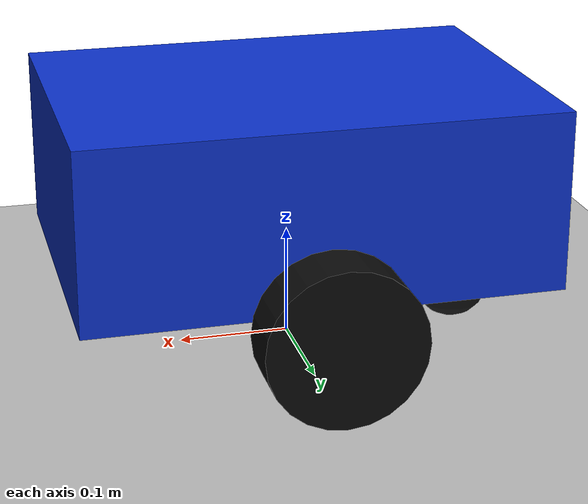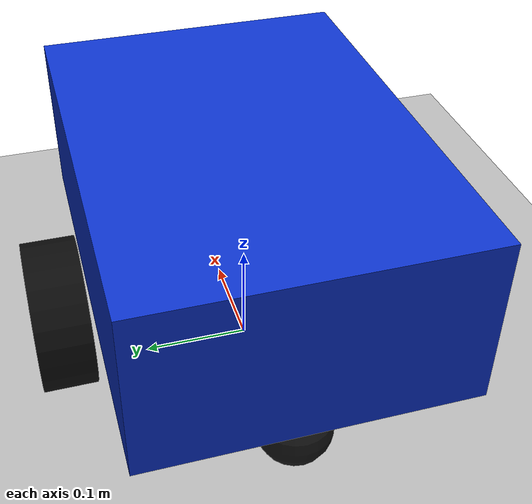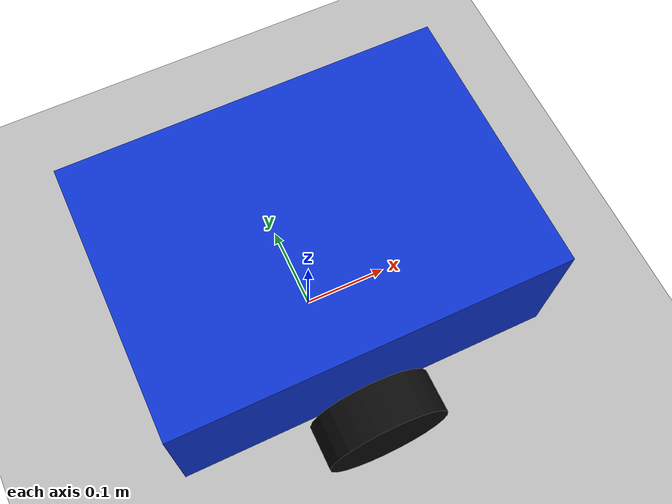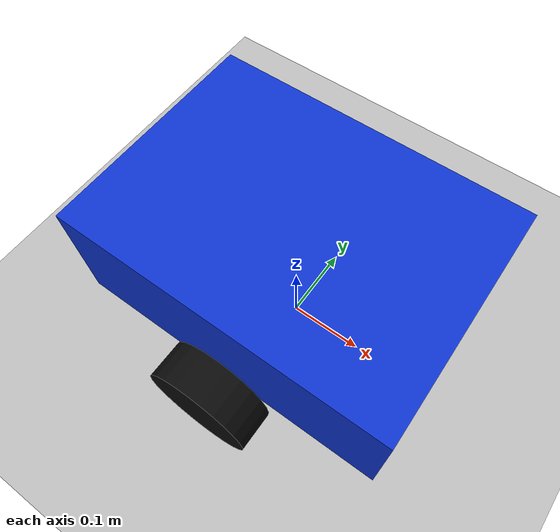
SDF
<?xml version="1.0"?>
<sdf version="1.10">
  <world name="diffbot_drive_world">
    <plugin filename="gz-sim-physics-system" name="gz::sim::systems::Physics"/>
    <plugin filename="gz-sim-user-commands-system" name="gz::sim::systems::UserCommands"/>
    <plugin filename="gz-sim-scene-broadcaster-system" name="gz::sim::systems::SceneBroadcaster"/>

    <gravity>0 0 -9.8</gravity>
    <magnetic_field>6.0e-6 2.3e-5 -4.2e-5</magnetic_field>
    <atmosphere type="adiabatic"/>

    <light name="sun" type="directional">
      <cast_shadows>true</cast_shadows>
      <pose>0 0 10 0 0 0</pose>
      <diffuse>0.8 0.8 0.8 1</diffuse>
      <specular>0.2 0.2 0.2 1</specular>
      <attenuation>
        <range>1000</range>
        <constant>0.9</constant>
        <linear>0.01</linear>
        <quadratic>0.001</quadratic>
      </attenuation>
      <direction>-0.5 0.1 -0.9</direction>
    </light>

    <model name="ground_plane">
      <static>true</static>
      <link name="link">
        <collision name="collision">
          <geometry>
            <plane>
              <normal>0 0 1</normal>
              <size>20 20</size>
            </plane>
          </geometry>
        </collision>
        <visual name="visual">
          <geometry>
            <plane>
              <normal>0 0 1</normal>
              <size>20 20</size>
            </plane>
          </geometry>
          <material>
            <ambient>0.72 0.72 0.72 1</ambient>
            <diffuse>0.72 0.72 0.72 1</diffuse>
            <specular>0.08 0.08 0.08 1</specular>
          </material>
        </visual>
      </link>
    </model>

    <model name="diffbot">
      <pose>0 0 0 0 0 0</pose>

      <link name="base_link">
        <pose>0 0 0.16 0 0 0</pose>
        <inertial>
          <mass>4.0</mass>
          <inertia>
            <ixx>0.04</ixx>
            <ixy>0</ixy>
            <ixz>0</ixz>
            <iyy>0.08</iyy>
            <iyz>0</iyz>
            <izz>0.10</izz>
          </inertia>
        </inertial>
        <visual name="visual">
          <geometry>
            <box>
              <size>0.42 0.30 0.16</size>
            </box>
          </geometry>
          <material>
            <ambient>0.05 0.20 0.80 1</ambient>
            <diffuse>0.05 0.20 0.80 1</diffuse>
            <specular>0.10 0.10 0.10 1</specular>
          </material>
        </visual>
        <collision name="collision">
          <geometry>
            <box>
              <size>0.42 0.30 0.16</size>
            </box>
          </geometry>
        </collision>
      </link>

      <link name="left_wheel_link">
        <pose>0 0.18 0.07 0 0 0</pose>
        <inertial>
          <mass>0.35</mass>
          <inertia>
            <ixx>0.001</ixx>
            <ixy>0</ixy>
            <ixz>0</ixz>
            <iyy>0.001</iyy>
            <iyz>0</iyz>
            <izz>0.001</izz>
          </inertia>
        </inertial>
        <visual name="visual">
          <pose>0 0 0 1.5708 0 0</pose>
          <geometry>
            <cylinder>
              <radius>0.07</radius>
              <length>0.05</length>
            </cylinder>
          </geometry>
          <material>
            <ambient>0.04 0.04 0.04 1</ambient>
            <diffuse>0.04 0.04 0.04 1</diffuse>
            <specular>0.20 0.20 0.20 1</specular>
          </material>
        </visual>
        <collision name="collision">
          <pose>0 0 0 1.5708 0 0</pose>
          <geometry>
            <cylinder>
              <radius>0.07</radius>
              <length>0.05</length>
            </cylinder>
          </geometry>
          <surface>
            <friction>
              <ode>
                <mu>1.0</mu>
                <mu2>1.0</mu2>
              </ode>
            </friction>
          </surface>
        </collision>
      </link>

      <link name="right_wheel_link">
        <pose>0 -0.18 0.07 0 0 0</pose>
        <inertial>
          <mass>0.35</mass>
          <inertia>
            <ixx>0.001</ixx>
            <ixy>0</ixy>
            <ixz>0</ixz>
            <iyy>0.001</iyy>
            <iyz>0</iyz>
            <izz>0.001</izz>
          </inertia>
        </inertial>
        <visual name="visual">
          <pose>0 0 0 1.5708 0 0</pose>
          <geometry>
            <cylinder>
              <radius>0.07</radius>
              <length>0.05</length>
            </cylinder>
          </geometry>
          <material>
            <ambient>0.04 0.04 0.04 1</ambient>
            <diffuse>0.04 0.04 0.04 1</diffuse>
            <specular>0.20 0.20 0.20 1</specular>
          </material>
        </visual>
        <collision name="collision">
          <pose>0 0 0 1.5708 0 0</pose>
          <geometry>
            <cylinder>
              <radius>0.07</radius>
              <length>0.05</length>
            </cylinder>
          </geometry>
          <surface>
            <friction>
              <ode>
                <mu>1.0</mu>
                <mu2>1.0</mu2>
              </ode>
            </friction>
          </surface>
        </collision>
      </link>

      <link name="caster_link">
        <pose>-0.16 0 0.035 0 0 0</pose>
        <inertial>
          <mass>0.1</mass>
          <inertia>
            <ixx>0.0001</ixx>
            <ixy>0</ixy>
            <ixz>0</ixz>
            <iyy>0.0001</iyy>
            <iyz>0</iyz>
            <izz>0.0001</izz>
          </inertia>
        </inertial>
        <visual name="visual">
          <geometry>
            <sphere>
              <radius>0.035</radius>
            </sphere>
          </geometry>
          <material>
            <ambient>0.08 0.08 0.08 1</ambient>
            <diffuse>0.08 0.08 0.08 1</diffuse>
            <specular>0.20 0.20 0.20 1</specular>
          </material>
        </visual>
        <collision name="collision">
          <geometry>
            <sphere>
              <radius>0.035</radius>
            </sphere>
          </geometry>
        </collision>
      </link>

      <joint name="left_wheel_joint" type="revolute">
        <parent>base_link</parent>
        <child>left_wheel_link</child>
        <axis>
          <xyz>0 1 0</xyz>
          <limit>
            <lower>-1.79769e+308</lower>
            <upper>1.79769e+308</upper>
          </limit>
        </axis>
      </joint>

      <joint name="right_wheel_joint" type="revolute">
        <parent>base_link</parent>
        <child>right_wheel_link</child>
        <axis>
          <xyz>0 1 0</xyz>
          <limit>
            <lower>-1.79769e+308</lower>
            <upper>1.79769e+308</upper>
          </limit>
        </axis>
      </joint>

      <joint name="caster_joint" type="ball">
        <parent>base_link</parent>
        <child>caster_link</child>
      </joint>

      <plugin filename="gz-sim-diff-drive-system" name="gz::sim::systems::DiffDrive">
        <left_joint>left_wheel_joint</left_joint>
        <right_joint>right_wheel_joint</right_joint>
        <wheel_separation>0.36</wheel_separation>
        <wheel_radius>0.07</wheel_radius>
        <topic>/cmd_vel</topic>
        <odom_topic>/odom</odom_topic>
        <frame_id>odom</frame_id>
        <child_frame_id>base_link</child_frame_id>
        <odom_publish_frequency>30</odom_publish_frequency>
        <max_linear_velocity>0.6</max_linear_velocity>
        <min_linear_velocity>-0.3</min_linear_velocity>
        <max_angular_velocity>1.2</max_angular_velocity>
        <min_angular_velocity>-1.2</min_angular_velocity>
      </plugin>
    </model>
  </world>
</sdf>
